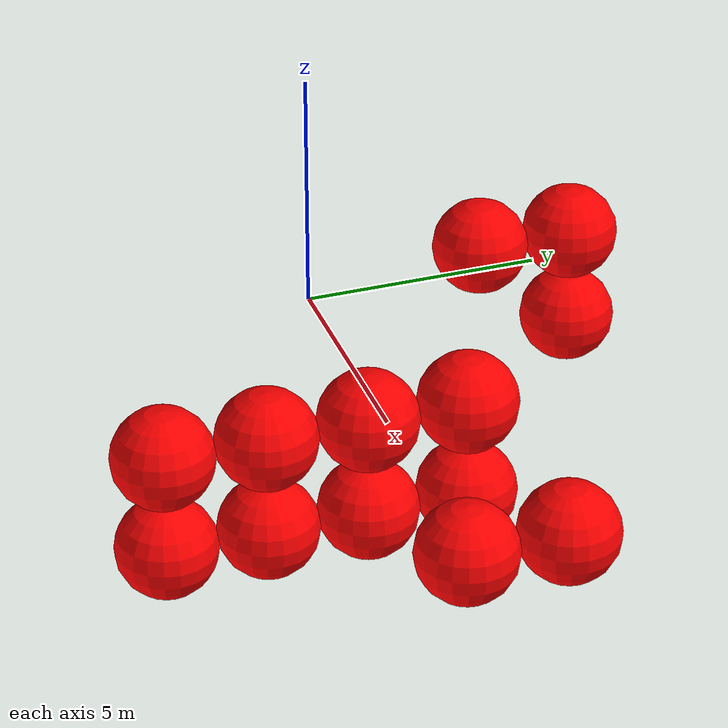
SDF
<sdf version="1.8">
 <world name="3d_world">
  <model name="obstacle_1" canonical_link="obstacle">
   <static>true</static>
   <pose relative_to="world">6.27 -4.81 -1.00 0 0 0</pose>
   <link name="obstacle">
    <pose relative_to="__model__">0.0 0 0.0 0 0 0</pose>
    <visual name="visual">
     <geometry><sphere><radius>1.00</radius></sphere></geometry>
     <material>
      <ambient>1.0 0.0 0.0 1</ambient>
      <diffuse>1.0 0.0 0.0 1</diffuse>
      <specular>1.0 0.0 0.0 1</specular>
     </material>
    </visual>
    <collision name="collision"><geometry><sphere><radius>1.00</radius></sphere></geometry></collision>
    <enable_gravity>false</enable_gravity>
   </link>
   <plugin filename="ignition-gazebo-velocity-control-system" name="ignition::gazebo::systems::VelocityControl">
    <initial_linear>0.00 0.00 0.00</initial_linear>
    <initial_angular>0 0 0</initial_angular>
   </plugin>
   <plugin filename="ignition-gazebo-odometry-publisher-system" name="ignition::gazebo::systems::OdometryPublisher">
    <dimensions>3</dimensions>
   </plugin>
  </model>
  <model name="obstacle_2" canonical_link="obstacle">
   <static>true</static>
   <pose relative_to="world">6.27 -2.81 -1.00 0 0 0</pose>
   <link name="obstacle">
    <pose relative_to="__model__">0.0 0 0.0 0 0 0</pose>
    <visual name="visual">
     <geometry><sphere><radius>1.00</radius></sphere></geometry>
     <material>
      <ambient>1.0 0.0 0.0 1</ambient>
      <diffuse>1.0 0.0 0.0 1</diffuse>
      <specular>1.0 0.0 0.0 1</specular>
     </material>
    </visual>
    <collision name="collision"><geometry><sphere><radius>1.00</radius></sphere></geometry></collision>
    <enable_gravity>false</enable_gravity>
   </link>
   <plugin filename="ignition-gazebo-velocity-control-system" name="ignition::gazebo::systems::VelocityControl">
    <initial_linear>0.00 0.00 0.00</initial_linear>
    <initial_angular>0 0 0</initial_angular>
   </plugin>
   <plugin filename="ignition-gazebo-odometry-publisher-system" name="ignition::gazebo::systems::OdometryPublisher">
    <dimensions>3</dimensions>
   </plugin>
  </model>
  <model name="obstacle_3" canonical_link="obstacle">
   <static>true</static>
   <pose relative_to="world">6.27 -0.81 -1.00 0 0 0</pose>
   <link name="obstacle">
    <pose relative_to="__model__">0.0 0 0.0 0 0 0</pose>
    <visual name="visual">
     <geometry><sphere><radius>1.00</radius></sphere></geometry>
     <material>
      <ambient>1.0 0.0 0.0 1</ambient>
      <diffuse>1.0 0.0 0.0 1</diffuse>
      <specular>1.0 0.0 0.0 1</specular>
     </material>
    </visual>
    <collision name="collision"><geometry><sphere><radius>1.00</radius></sphere></geometry></collision>
    <enable_gravity>false</enable_gravity>
   </link>
   <plugin filename="ignition-gazebo-velocity-control-system" name="ignition::gazebo::systems::VelocityControl">
    <initial_linear>0.00 0.00 0.00</initial_linear>
    <initial_angular>0 0 0</initial_angular>
   </plugin>
   <plugin filename="ignition-gazebo-odometry-publisher-system" name="ignition::gazebo::systems::OdometryPublisher">
    <dimensions>3</dimensions>
   </plugin>
  </model>
  <model name="obstacle_4" canonical_link="obstacle">
   <static>true</static>
   <pose relative_to="world">6.27 1.19 -1.00 0 0 0</pose>
   <link name="obstacle">
    <pose relative_to="__model__">0.0 0 0.0 0 0 0</pose>
    <visual name="visual">
     <geometry><sphere><radius>1.00</radius></sphere></geometry>
     <material>
      <ambient>1.0 0.0 0.0 1</ambient>
      <diffuse>1.0 0.0 0.0 1</diffuse>
      <specular>1.0 0.0 0.0 1</specular>
     </material>
    </visual>
    <collision name="collision"><geometry><sphere><radius>1.00</radius></sphere></geometry></collision>
    <enable_gravity>false</enable_gravity>
   </link>
   <plugin filename="ignition-gazebo-velocity-control-system" name="ignition::gazebo::systems::VelocityControl">
    <initial_linear>0.00 0.00 0.00</initial_linear>
    <initial_angular>0 0 0</initial_angular>
   </plugin>
   <plugin filename="ignition-gazebo-odometry-publisher-system" name="ignition::gazebo::systems::OdometryPublisher">
    <dimensions>3</dimensions>
   </plugin>
  </model>
  <model name="obstacle_5" canonical_link="obstacle">
   <static>true</static>
   <pose relative_to="world">6.27 -4.81 1.00 0 0 0</pose>
   <link name="obstacle">
    <pose relative_to="__model__">0.0 0 0.0 0 0 0</pose>
    <visual name="visual">
     <geometry><sphere><radius>1.00</radius></sphere></geometry>
     <material>
      <ambient>1.0 0.0 0.0 1</ambient>
      <diffuse>1.0 0.0 0.0 1</diffuse>
      <specular>1.0 0.0 0.0 1</specular>
     </material>
    </visual>
    <collision name="collision"><geometry><sphere><radius>1.00</radius></sphere></geometry></collision>
    <enable_gravity>false</enable_gravity>
   </link>
   <plugin filename="ignition-gazebo-velocity-control-system" name="ignition::gazebo::systems::VelocityControl">
    <initial_linear>0.00 0.00 0.00</initial_linear>
    <initial_angular>0 0 0</initial_angular>
   </plugin>
   <plugin filename="ignition-gazebo-odometry-publisher-system" name="ignition::gazebo::systems::OdometryPublisher">
    <dimensions>3</dimensions>
   </plugin>
  </model>
  <model name="obstacle_6" canonical_link="obstacle">
   <static>true</static>
   <pose relative_to="world">6.27 -2.81 1.00 0 0 0</pose>
   <link name="obstacle">
    <pose relative_to="__model__">0.0 0 0.0 0 0 0</pose>
    <visual name="visual">
     <geometry><sphere><radius>1.00</radius></sphere></geometry>
     <material>
      <ambient>1.0 0.0 0.0 1</ambient>
      <diffuse>1.0 0.0 0.0 1</diffuse>
      <specular>1.0 0.0 0.0 1</specular>
     </material>
    </visual>
    <collision name="collision"><geometry><sphere><radius>1.00</radius></sphere></geometry></collision>
    <enable_gravity>false</enable_gravity>
   </link>
   <plugin filename="ignition-gazebo-velocity-control-system" name="ignition::gazebo::systems::VelocityControl">
    <initial_linear>0.00 0.00 0.00</initial_linear>
    <initial_angular>0 0 0</initial_angular>
   </plugin>
   <plugin filename="ignition-gazebo-odometry-publisher-system" name="ignition::gazebo::systems::OdometryPublisher">
    <dimensions>3</dimensions>
   </plugin>
  </model>
  <model name="obstacle_7" canonical_link="obstacle">
   <static>true</static>
   <pose relative_to="world">6.27 -0.81 1.00 0 0 0</pose>
   <link name="obstacle">
    <pose relative_to="__model__">0.0 0 0.0 0 0 0</pose>
    <visual name="visual">
     <geometry><sphere><radius>1.00</radius></sphere></geometry>
     <material>
      <ambient>1.0 0.0 0.0 1</ambient>
      <diffuse>1.0 0.0 0.0 1</diffuse>
      <specular>1.0 0.0 0.0 1</specular>
     </material>
    </visual>
    <collision name="collision"><geometry><sphere><radius>1.00</radius></sphere></geometry></collision>
    <enable_gravity>false</enable_gravity>
   </link>
   <plugin filename="ignition-gazebo-velocity-control-system" name="ignition::gazebo::systems::VelocityControl">
    <initial_linear>0.00 0.00 0.00</initial_linear>
    <initial_angular>0 0 0</initial_angular>
   </plugin>
   <plugin filename="ignition-gazebo-odometry-publisher-system" name="ignition::gazebo::systems::OdometryPublisher">
    <dimensions>3</dimensions>
   </plugin>
  </model>
  <model name="obstacle_8" canonical_link="obstacle">
   <static>true</static>
   <pose relative_to="world">6.27 1.19 1.00 0 0 0</pose>
   <link name="obstacle">
    <pose relative_to="__model__">0.0 0 0.0 0 0 0</pose>
    <visual name="visual">
     <geometry><sphere><radius>1.00</radius></sphere></geometry>
     <material>
      <ambient>1.0 0.0 0.0 1</ambient>
      <diffuse>1.0 0.0 0.0 1</diffuse>
      <specular>1.0 0.0 0.0 1</specular>
     </material>
    </visual>
    <collision name="collision"><geometry><sphere><radius>1.00</radius></sphere></geometry></collision>
    <enable_gravity>false</enable_gravity>
   </link>
   <plugin filename="ignition-gazebo-velocity-control-system" name="ignition::gazebo::systems::VelocityControl">
    <initial_linear>0.00 0.00 0.00</initial_linear>
    <initial_angular>0 0 0</initial_angular>
   </plugin>
   <plugin filename="ignition-gazebo-odometry-publisher-system" name="ignition::gazebo::systems::OdometryPublisher">
    <dimensions>3</dimensions>
   </plugin>
  </model>
  <model name="obstacle_20" canonical_link="obstacle">
   <static>true</static>
   <pose relative_to="world">0.70 5.53 -1.00 0 0 0</pose>
   <link name="obstacle">
    <pose relative_to="__model__">0.0 0 0.0 0 0 0</pose>
    <visual name="visual">
     <geometry><sphere><radius>1.00</radius></sphere></geometry>
     <material>
      <ambient>1.0 0.0 0.0 1</ambient>
      <diffuse>1.0 0.0 0.0 1</diffuse>
      <specular>1.0 0.0 0.0 1</specular>
     </material>
    </visual>
    <collision name="collision"><geometry><sphere><radius>1.00</radius></sphere></geometry></collision>
    <enable_gravity>false</enable_gravity>
   </link>
   <plugin filename="ignition-gazebo-velocity-control-system" name="ignition::gazebo::systems::VelocityControl">
    <initial_linear>0.00 0.00 0.00</initial_linear>
    <initial_angular>0 0 0</initial_angular>
   </plugin>
   <plugin filename="ignition-gazebo-odometry-publisher-system" name="ignition::gazebo::systems::OdometryPublisher">
    <dimensions>3</dimensions>
   </plugin>
  </model>
  <model name="obstacle_21" canonical_link="obstacle">
   <static>true</static>
   <pose relative_to="world">0.70 3.53 1.00 0 0 0</pose>
   <link name="obstacle">
    <pose relative_to="__model__">0.0 0 0.0 0 0 0</pose>
    <visual name="visual">
     <geometry><sphere><radius>1.00</radius></sphere></geometry>
     <material>
      <ambient>1.0 0.0 0.0 1</ambient>
      <diffuse>1.0 0.0 0.0 1</diffuse>
      <specular>1.0 0.0 0.0 1</specular>
     </material>
    </visual>
    <collision name="collision"><geometry><sphere><radius>1.00</radius></sphere></geometry></collision>
    <enable_gravity>false</enable_gravity>
   </link>
   <plugin filename="ignition-gazebo-velocity-control-system" name="ignition::gazebo::systems::VelocityControl">
    <initial_linear>0.00 0.00 0.00</initial_linear>
    <initial_angular>0 0 0</initial_angular>
   </plugin>
   <plugin filename="ignition-gazebo-odometry-publisher-system" name="ignition::gazebo::systems::OdometryPublisher">
    <dimensions>3</dimensions>
   </plugin>
  </model>
  <model name="obstacle_22" canonical_link="obstacle">
   <static>true</static>
   <pose relative_to="world">0.70 5.53 1.00 0 0 0</pose>
   <link name="obstacle">
    <pose relative_to="__model__">0.0 0 0.0 0 0 0</pose>
    <visual name="visual">
     <geometry><sphere><radius>1.00</radius></sphere></geometry>
     <material>
      <ambient>1.0 0.0 0.0 1</ambient>
      <diffuse>1.0 0.0 0.0 1</diffuse>
      <specular>1.0 0.0 0.0 1</specular>
     </material>
    </visual>
    <collision name="collision"><geometry><sphere><radius>1.00</radius></sphere></geometry></collision>
    <enable_gravity>false</enable_gravity>
   </link>
   <plugin filename="ignition-gazebo-velocity-control-system" name="ignition::gazebo::systems::VelocityControl">
    <initial_linear>0.00 0.00 0.00</initial_linear>
    <initial_angular>0 0 0</initial_angular>
   </plugin>
   <plugin filename="ignition-gazebo-odometry-publisher-system" name="ignition::gazebo::systems::OdometryPublisher">
    <dimensions>3</dimensions>
   </plugin>
  </model>
  <model name="obstacle_24" canonical_link="obstacle">
   <static>false</static>
   <pose relative_to="world">9.48 0.00 -0.07 0 0 0</pose>
   <link name="obstacle">
    <pose relative_to="__model__">0.0 0 0.0 0 0 0</pose>
    <visual name="visual">
     <geometry><sphere><radius>1.00</radius></sphere></geometry>
     <material>
      <ambient>1.0 0.0 0.0 1</ambient>
      <diffuse>1.0 0.0 0.0 1</diffuse>
      <specular>1.0 0.0 0.0 1</specular>
     </material>
    </visual>
    <collision name="collision"><geometry><sphere><radius>1.00</radius></sphere></geometry></collision>
    <enable_gravity>false</enable_gravity>
   </link>
   <plugin filename="ignition-gazebo-velocity-control-system" name="ignition::gazebo::systems::VelocityControl">
    <initial_linear>0.00 -1.56 0.33</initial_linear>
    <initial_angular>0 0 0</initial_angular>
   </plugin>
   <plugin filename="ignition-gazebo-odometry-publisher-system" name="ignition::gazebo::systems::OdometryPublisher">
    <dimensions>3</dimensions>
   </plugin>
  </model>
  <model name="obstacle_25" canonical_link="obstacle">
   <static>false</static>
   <pose relative_to="world">9.48 2.00 -0.07 0 0 0</pose>
   <link name="obstacle">
    <pose relative_to="__model__">0.0 0 0.0 0 0 0</pose>
    <visual name="visual">
     <geometry><sphere><radius>1.00</radius></sphere></geometry>
     <material>
      <ambient>1.0 0.0 0.0 1</ambient>
      <diffuse>1.0 0.0 0.0 1</diffuse>
      <specular>1.0 0.0 0.0 1</specular>
     </material>
    </visual>
    <collision name="collision"><geometry><sphere><radius>1.00</radius></sphere></geometry></collision>
    <enable_gravity>false</enable_gravity>
   </link>
   <plugin filename="ignition-gazebo-velocity-control-system" name="ignition::gazebo::systems::VelocityControl">
    <initial_linear>0.00 -1.56 0.33</initial_linear>
    <initial_angular>0 0 0</initial_angular>
   </plugin>
   <plugin filename="ignition-gazebo-odometry-publisher-system" name="ignition::gazebo::systems::OdometryPublisher">
    <dimensions>3</dimensions>
   </plugin>
  </model>
 </world>
</sdf>
